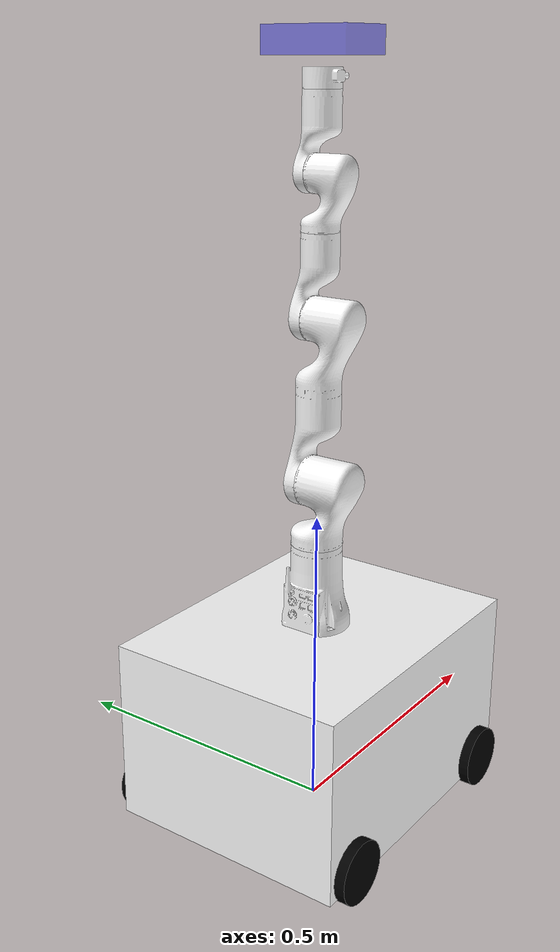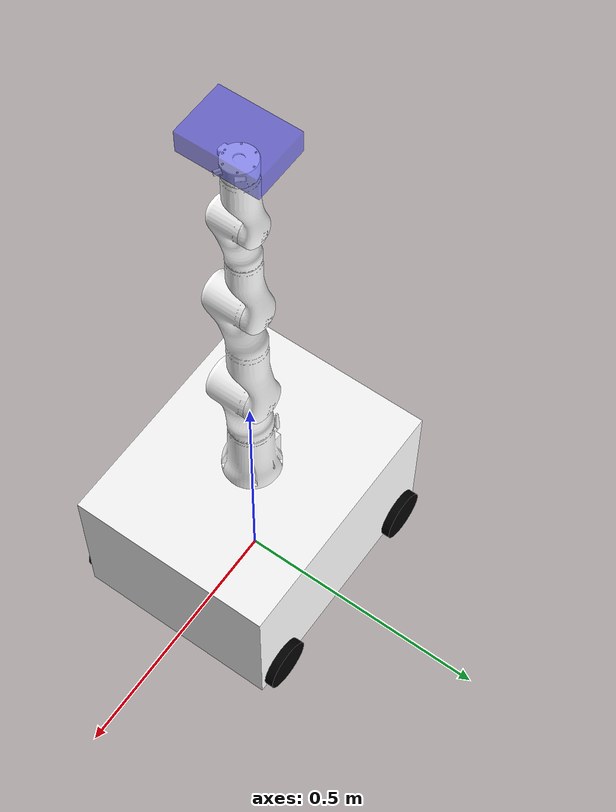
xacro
<?xml version="1.0" encoding="utf-8"?>
<robot name="rm_65_combined" xmlns:xacro="http://www.ros.org/wiki/xacro">

<xacro:include filename="$(find rm_65_description)/urdf/rm_65.transmission.xacro"/>
<xacro:include filename="$(find rm_65_description)/urdf/rm_65.gazebo.xacro"/>

<xacro:property name="wheel_radius" value="0.05" />
<xacro:property name="wheel_length" value="0.03" />
<xacro:property name="kinect_pose_h" value="0.035" />

<xacro:property name="wheel_radius" value="0.05" />  <!-- 轮子半径 -->
<xacro:property name="wheel_length" value="0.03" />
<!-- KINECT DK 相机 -->
<xacro:property name="kinect_dk_box_width" value="0.1" />
<xacro:property name="kinect_dk_box_length" value="0.14" />
<xacro:property name="kinect_dk_box_height" value="0.04" />
<xacro:property name="kinect_pose_h" value="0.035" />

<!-- 材料定义 -->
<material name="yellow"><color rgba="1 1 0 1"/></material>
<material name="white"><color rgba="1 1 1 1"/></material>
<material name="black"><color rgba="0 0 0 1"/></material>
<material name="blue"><color rgba="0.2 0.2 1 0.5"/></material>
<material name="red"><color rgba="1 0.2 0.2 0.5"/></material> <!-- 从原文件补充 -->

<!-- 虚拟根链接 -->
<link name="base_footprint"/>

<joint name="base_footprint_joint" type="fixed">
  <parent link="base_footprint"/>
  <child link="base_link_wheeltec"/>
  <origin xyz="0 0 0" rpy="0 0 0"/>
</joint>

<!-- 移动底盘 -->
<link name="base_link_wheeltec">
  <inertial>
    <origin xyz="0 0 0.0975" rpy="0 0 0"/>
    <mass value="2.0"/>
    <inertia ixx="0.03" ixy="0.0" ixz="0.0" iyy="0.05" iyz="0.0" izz="0.07"/>
  </inertial>
  <visual>
    <origin xyz="0 0 0.17" rpy="0 0 0" />
    <geometry><box size="0.5 0.4 0.3"/></geometry>
    <material name="white"/>
  </visual>
  <collision>
    <origin xyz="0 0 0.17" rpy="0 0 0" />
    <geometry><box size="0.5 0.4 0.3"/></geometry>
  </collision>
</link>

<!-- 轮子宏定义 -->
<xacro:macro name="wheel_gen" params="prefix x y">
  <joint name="${prefix}_joint" type="revolute">
    <origin xyz="${x} ${y} ${wheel_radius}" rpy="1.57 0 0"/>
    <parent link="base_link_wheeltec"/>
    <child link="${prefix}_link"/>
    <axis xyz="0 1 0"/>
    <limit lower="-100" upper="100" effort="10" velocity="10"/>
  </joint>
  <link name="${prefix}_link">
    <inertial>
      <origin xyz="0 0 0" rpy="0 0 0"/>
      <mass value="0.5"/>
      <inertia ixx="0.0005" ixy="0.0" ixz="0.0" iyy="0.001" iyz="0.0" izz="0.0005"/>
    </inertial>
    <visual>
      <geometry><cylinder radius="${wheel_radius}" length="${wheel_length}"/></geometry>
      <material name="black"/>
    </visual>
    <collision>
      <geometry><cylinder radius="${wheel_radius}" length="${wheel_length}"/></geometry>
    </collision>
  </link>
</xacro:macro>

<xacro:wheel_gen prefix="left_front"  x="0.191"  y="0.202" />
<xacro:wheel_gen prefix="right_front" x="0.191"  y="-0.202" />
<xacro:wheel_gen prefix="left_wheel"  x="-0.191" y="0.202" />
<xacro:wheel_gen prefix="right_wheel" x="-0.191" y="-0.202" />

<!-- 底盘到机械臂的连接 -->
<joint name="wheeltec_to_arm_joint" type="fixed">
  <origin xyz="0 0 0.32" rpy="0 0 3.1415926"/>
  <parent link="base_link_wheeltec"/>
  <child link="base_link"/>
</joint>

<!-- RM-65 机械臂 -->
<link name="base_link">
  <inertial>
    <origin xyz="-0.00043 0 0.0599" rpy="0 0 0" />
    <mass value="0.841"/>
    <inertia ixx="0.0017" ixy="0" ixz="0" iyy="0.0017" iyz="0" izz="0.0009" />
  </inertial>
  <visual>
    <origin xyz="0 0 0" rpy="0 0 0" />
    <geometry><mesh filename="package://rm_65_description/meshes/base_link.STL" /></geometry>
    <material name="">
      <color rgba="1 1 1 1" />
    </material>
  </visual>
  <collision>
    <origin xyz="0 0 0" rpy="0 0 0" />
    <geometry><mesh filename="package://rm_65_description/meshes/base_link.STL" /></geometry>
  </collision>
</link>

<joint name="joint1" type="revolute">
  <origin xyz="0 0 0.2405" rpy="0 0 0" />
  <parent link="base_link" />
  <child link="Link1" />
  <axis xyz="0 0 1" />
  <limit lower="-3.1" upper="3.1" effort="60" velocity="3.14" />
  <dynamics damping="50" friction="1"/>
</joint>

<link name="Link1">
  <inertial>
    <origin xyz="0 0.021 -0.025" rpy="0 0 0" />
    <mass value="0.593"/>
    <inertia ixx="0.0012" ixy="0" ixz="0" iyy="0.0011" iyz="-0.0002" izz="0.0005" />
  </inertial>
  <visual>
    <origin xyz="0 0 0" rpy="0 0 0" />
    <geometry><mesh filename="package://rm_65_description/meshes/link1.STL" /></geometry>
    <material name="">
      <color rgba="1 1 1 1" />
    </material>
  </visual>
  <collision>
    <origin xyz="0 0 0" rpy="0 0 0" />
    <geometry><mesh filename="package://rm_65_description/meshes/link1.STL" /></geometry>
  </collision>
</link>

<joint name="joint2" type="revolute">
  <origin xyz="0 0 0" rpy="1.5708 -1.5708 0" />
  <parent link="Link1" />
  <child link="Link2" />
  <axis xyz="0 0 1" />
  <limit lower="-2.268" upper="2.268" effort="60" velocity="3.14" />
  <dynamics damping="50" friction="1"/>
</joint>

<link name="Link2">
  <inertial>
    <origin xyz="0.152 0 -0.006" rpy="0 0 0" />
    <mass value="0.864"/>
    <inertia ixx="0.0008" ixy="0" ixz="0.0015" iyy="0.007" iyz="0" izz="0.006" />
  </inertial>
  <visual>
    <origin xyz="0 0 0" rpy="0 0 0" />
    <geometry><mesh filename="package://rm_65_description/meshes/link2.STL" /></geometry>
    <material name="">
      <color rgba="1 1 1 1" />
    </material>
  </visual>
  <collision>
    <origin xyz="0 0 0" rpy="0 0 0" />
    <geometry><mesh filename="package://rm_65_description/meshes/link2.STL" /></geometry>
  </collision>
</link>

<joint name="joint3" type="revolute">
  <origin xyz="0.256 0 0" rpy="0 0 1.5708" />
  <parent link="Link2" />
  <child link="Link3" />
  <axis xyz="0 0 1" />
  <limit lower="-2.355" upper="2.355" effort="30" velocity="3.92" />
  <dynamics damping="50" friction="1"/>
</joint>

<link name="Link3">
  <inertial>
    <origin xyz="0 -0.059 0.01" rpy="0 0 0" />
    <mass value="0.289"/>
    <inertia ixx="0.0006" ixy="0" ixz="0" iyy="0.0001" iyz="-0.0001" izz="0.0006" />
  </inertial>
  <visual>
    <origin xyz="0 0 0" rpy="0 0 0" />
    <geometry><mesh filename="package://rm_65_description/meshes/link3.STL" /></geometry>
    <material name="">
      <color rgba="1 1 1 1" />
    </material>
  </visual>
  <collision>
    <origin xyz="0 0 0" rpy="0 0 0" />
    <geometry><mesh filename="package://rm_65_description/meshes/link3.STL" /></geometry>
  </collision>
</link>

<joint name="joint4" type="revolute">
  <origin xyz="0 -0.21 0" rpy="1.5708 0 0" />
  <parent link="Link3" />
  <child link="Link4" />
  <axis xyz="0 0 1" />
  <limit lower="-3.1" upper="3.1" effort="10" velocity="3.92" />
  <dynamics damping="50" friction="1"/>
</joint>

<link name="Link4">
  <inertial>
    <origin xyz="0 -0.018 -0.021" rpy="0 0 0" />
    <mass value="0.239"/>
    <inertia ixx="0.0002" ixy="0" ixz="0" iyy="0.0002" iyz="0" izz="0.0001" />
  </inertial>
  <visual>
    <origin xyz="0 0 0" rpy="0 0 0" />
    <geometry><mesh filename="package://rm_65_description/meshes/link4.STL" /></geometry>
    <material name="">
      <color rgba="1 1 1 1" />
    </material>
  </visual>
  <collision>
    <origin xyz="0 0 0" rpy="0 0 0" />
    <geometry><mesh filename="package://rm_65_description/meshes/link4.STL" /></geometry>
  </collision>
</link>

<joint name="joint5" type="revolute">
  <origin xyz="0 0 0" rpy="-1.5708 0 0" />
  <parent link="Link4" />
  <child link="Link5" />
  <axis xyz="0 0 1" />
  <limit lower="-2.233" upper="2.233" effort="10" velocity="3.92" />
  <dynamics damping="50" friction="1"/>
</joint>

<link name="Link5">
  <inertial>
    <origin xyz="0 -0.059 0.007" rpy="0 0 0" />
    <mass value="0.218"/>
    <inertia ixx="0.0003" ixy="0" ixz="0" iyy="0.0001" iyz="-0.00007" izz="0.0003" />
  </inertial>
  <visual>
    <origin xyz="0 0 0" rpy="0 0 0" />
    <geometry><mesh filename="package://rm_65_description/meshes/link5.STL" /></geometry>
    <material name="">
      <color rgba="1 1 1 1" />
    </material>
  </visual>
  <collision>
    <origin xyz="0 0 0" rpy="0 0 0" />
    <geometry><mesh filename="package://rm_65_description/meshes/link5.STL" /></geometry>
  </collision>
</link>

<joint name="joint6" type="revolute">
  <origin xyz="0 -0.144 0" rpy="1.5708 0 0" />
  <parent link="Link5" />
  <child link="Link6" />
  <axis xyz="0 0 1" />
  <limit lower="-6.28" upper="6.28" effort="10" velocity="3.92" />
  <dynamics damping="50" friction="1"/>
</joint>

<link name="Link6">
  <inertial>
    <origin xyz="0 0 -0.012" rpy="0 0 0" />
    <mass value="0.064"/>
    <inertia ixx="0.00002" ixy="0" ixz="0" iyy="0.000018" iyz="0" izz="0.00003" />
  </inertial>
  <visual>
    <origin xyz="0 0 0" rpy="0 0 0" />
    <geometry><mesh filename="package://rm_65_description/meshes/link6.STL" /></geometry>
    <material name="">
      <color rgba="1 1 1 1" />
    </material>
  </visual>
  <collision>
    <origin xyz="0 0 0" rpy="0 0 0" />
    <geometry><mesh filename="package://rm_65_description/meshes/link6.STL" /></geometry>
  </collision>
</link>

<!-- kinect dk 相机 -->
<link name="kinect_dk_camera_link">
  <visual>
    <origin xyz="0 0 0" rpy="0 0 0" />
    <geometry>
      <box size="${kinect_dk_box_width} ${kinect_dk_box_length} ${kinect_dk_box_height}" />
    </geometry>
    <material name="blue"/>
  </visual>
  <collision>
    <origin xyz="0 0 0" rpy="0 0 0" />
    <geometry>
      <box size="${kinect_dk_box_width} ${kinect_dk_box_length} ${kinect_dk_box_height}" />
    </geometry>
  </collision>
  <inertial>
    <origin xyz="0 0 0" rpy="0 0 0" />
    <mass value="0.5" /> <inertia
      ixx="${0.5 * (kinect_dk_box_length*kinect_dk_box_length + kinect_dk_box_height*kinect_dk_box_height)}"
      ixy="0.0"
      ixz="0.0"
      iyy="${0.5 * (kinect_dk_box_width*kinect_dk_box_width + kinect_dk_box_height*kinect_dk_box_height)}"
      iyz="0.0"
      izz="${0.5 * (kinect_dk_box_width*kinect_dk_box_width + kinect_dk_box_length*kinect_dk_box_length)}" />
  </inertial>
</link>

<joint name="kinect_dk_camera_joint" type="fixed">
  <origin xyz="0 0 ${kinect_pose_h}" rpy="0 0 0"/>
  <parent link="Link6"/>
  <child link="kinect_dk_camera_link"/>
</joint>

<!-- 传动与控制 -->
<!-- 传动宏定义 -->
<xacro:macro name="transmission_block" params="joint_name">
  <transmission name="tran1">
    <type>transmission_interface/SimpleTransmission</type>
    <joint name="${joint_name}">
      <hardwareInterface>hardware_interface/PositionJointInterface</hardwareInterface>
    </joint>
    <actuator name="motor1">
      <hardwareInterface>hardware_interface/PositionJointInterface</hardwareInterface>
      <mechanicalReduction>1</mechanicalReduction>
    </actuator>
  </transmission>
</xacro:macro>

<!-- 机械臂关节传动 -->
<xacro:transmission_block joint_name="joint1"/>
<xacro:transmission_block joint_name="joint2"/>
<xacro:transmission_block joint_name="joint3"/>
<xacro:transmission_block joint_name="joint4"/>
<xacro:transmission_block joint_name="joint5"/>
<xacro:transmission_block joint_name="joint6"/>

<!-- 轮子关节传动 -->
<xacro:transmission_block joint_name="left_front_joint"/>
<xacro:transmission_block joint_name="right_front_joint"/>
<xacro:transmission_block joint_name="left_wheel_joint"/>
<xacro:transmission_block joint_name="right_wheel_joint"/>

<!-- Gazebo ros_control 插件 -->
<gazebo>
  <plugin name="gazebo_ros_control" filename="libgazebo_ros_control.so">
    <robotNamespace>/arm</robotNamespace>
    <robotSimType>gazebo_ros_control/DefaultRobotHWSim</robotSimType>
    <legacyModeNS>true</legacyModeNS>
  </plugin>
</gazebo>

</robot>
